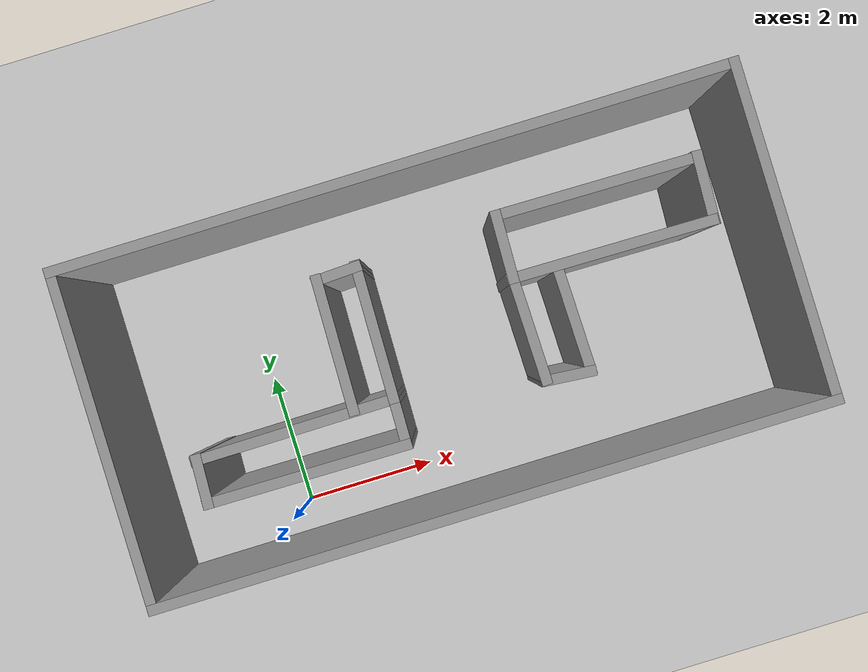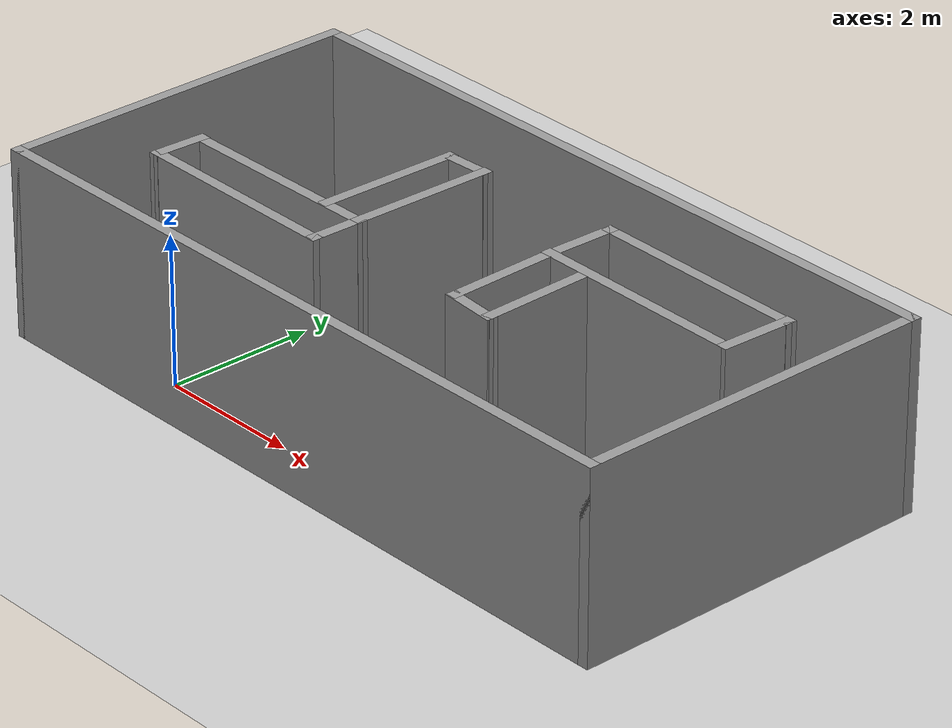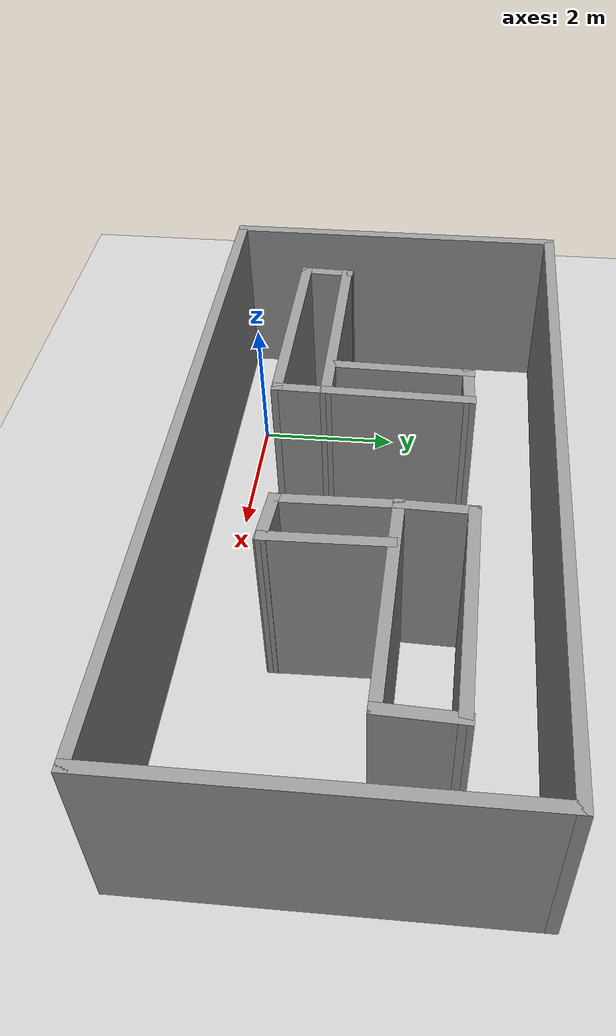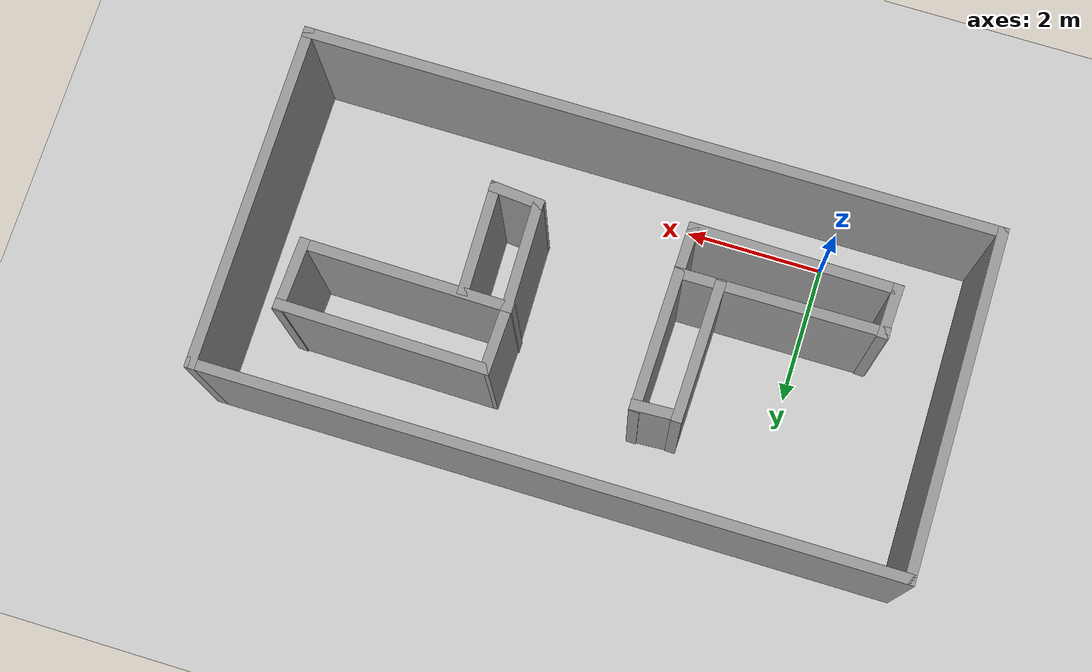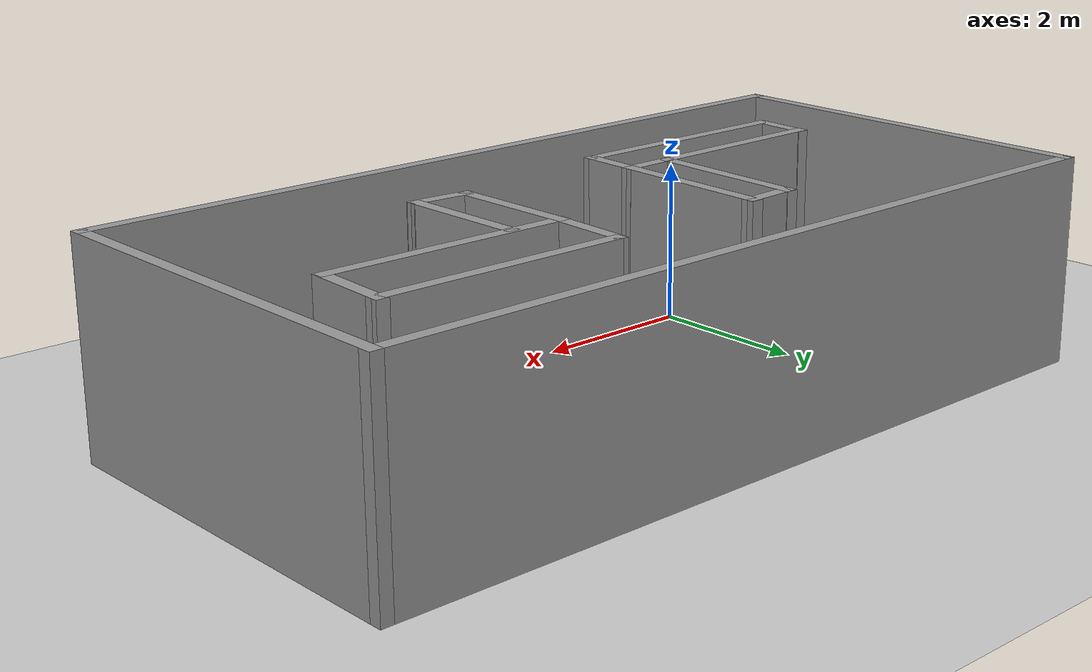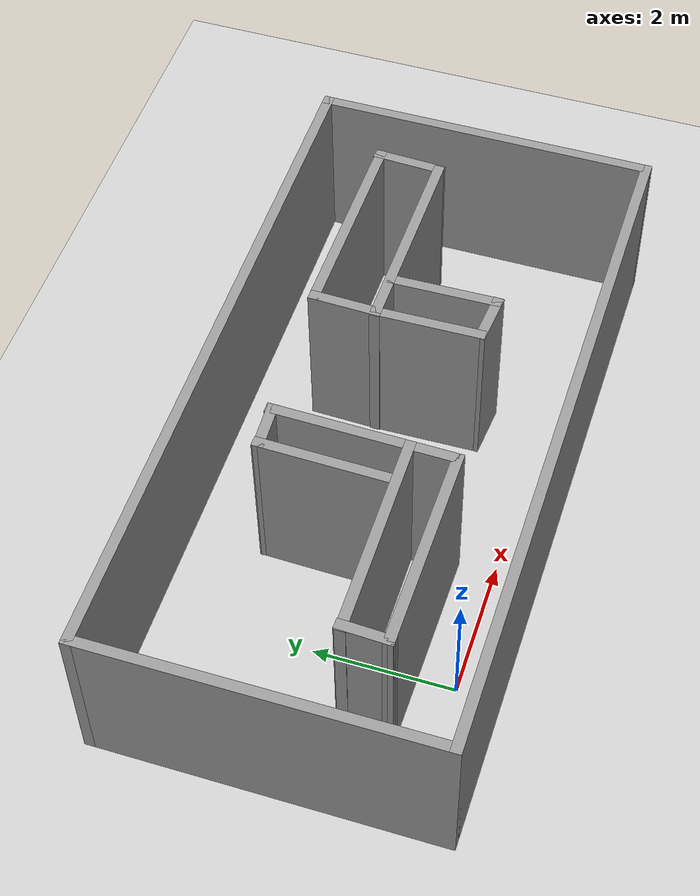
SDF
<sdf version="1.6">
 <world name="default">
  <light name="sun" type="directional">
   <pose>0 0 10 0 -0 0</pose>
   <diffuse>0.8 0.8 0.8 1</diffuse>
   <specular>0.2 0.2 0.2 1</specular>
   <attenuation>
    <range>1000</range>
    <constant>0.9</constant>
    <linear>0.01</linear>
    <quadratic>0.001</quadratic>
   </attenuation>
   <direction>-0.5 0.1 -0.9</direction>
  </light>
  <model name="ground_plane">
   <static>1</static>
   <link name="link">
    <collision name="collision">
     <geometry><plane><normal>0 0 1</normal><size>100 100</size></plane></geometry>
     <surface><friction><ode><mu>100</mu><mu2>50</mu2></ode></friction></surface>
    </collision>
    <visual name="visual">
     <cast_shadows>0</cast_shadows>
     <geometry><plane><normal>0 0 1</normal><size>100 100</size></plane></geometry>
     <material>
      <script><uri>file://media/materials/scripts/gazebo.material</uri><name>Gazebo/Grey</name></script>
     </material>
    </visual>
   </link>
  </model>
  <gravity>0 0 -9.8</gravity>
  <magnetic_field>6e-06 2.3e-05 -4.2e-05</magnetic_field>
  <atmosphere type="adiabatic"/>
  <physics name="default_physics" default="0" type="ode">
   <max_step_size>0.001</max_step_size>
   <real_time_factor>1</real_time_factor>
   <real_time_update_rate>1000</real_time_update_rate>
  </physics>
  <scene><ambient>0.4 0.4 0.4 1</ambient><background>0.7 0.7 0.7 1</background><shadows>1</shadows></scene>
  <audio><device>default</device></audio>
  <spherical_coordinates>
   <surface_model>EARTH_WGS84</surface_model>
   <latitude_deg>0</latitude_deg>
   <longitude_deg>0</longitude_deg>
   <elevation>0</elevation>
   <heading_deg>0</heading_deg>
  </spherical_coordinates>
  <model name="Untitled">
   <pose>2.7985 1.87197 0 0 -0 0</pose>
   <link name="Wall_0">
    <collision name="Wall_0_Collision">
     <geometry><box><size>10 0.15 2.5</size></box></geometry>
     <pose>0 0 1.25 0 -0 0</pose>
    </collision>
    <visual name="Wall_0_Visual">
     <pose>0 0 1.25 0 -0 0</pose>
     <geometry><box><size>10 0.15 2.5</size></box></geometry>
     <material>
      <script><uri>file://media/materials/scripts/gazebo.material</uri><name>Gazebo/Grey</name></script>
      <ambient>1 1 1 1</ambient>
     </material>
     <meta><layer>0</layer></meta>
    </visual>
    <pose>-0 -2.425 0 0 -0 0</pose>
   </link>
   <link name="Wall_1">
    <collision name="Wall_1_Collision">
     <geometry><box><size>5 0.15 2.5</size></box></geometry>
     <pose>0 0 1.25 0 -0 0</pose>
    </collision>
    <visual name="Wall_1_Visual">
     <pose>0 0 1.25 0 -0 0</pose>
     <geometry><box><size>5 0.15 2.5</size></box></geometry>
     <material>
      <script><uri>file://media/materials/scripts/gazebo.material</uri><name>Gazebo/Grey</name></script>
      <ambient>1 1 1 1</ambient>
     </material>
     <meta><layer>0</layer></meta>
    </visual>
    <pose>4.925 -0 0 0 -0 1.5708</pose>
   </link>
   <link name="Wall_10">
    <collision name="Wall_10_Collision">
     <geometry><box><size>1.04134 0.15 2.5</size></box></geometry>
     <pose>0 0 1.25 0 -0 0</pose>
    </collision>
    <visual name="Wall_10_Visual">
     <pose>0 0 1.25 0 -0 0</pose>
     <geometry><box><size>1.04134 0.15 2.5</size></box></geometry>
     <material>
      <script><uri>file://media/materials/scripts/gazebo.material</uri><name>Gazebo/Grey</name></script>
      <ambient>1 1 1 1</ambient>
     </material>
     <meta><layer>0</layer></meta>
    </visual>
    <pose>1.1585 0.9251 0 0 -0 -1.60048</pose>
   </link>
   <link name="Wall_11">
    <collision name="Wall_11_Collision">
     <geometry><box><size>3.02672 0.15 2.5</size></box></geometry>
     <pose>0 0 1.25 0 -0 0</pose>
    </collision>
    <visual name="Wall_11_Visual">
     <pose>0 0 1.25 0 -0 0</pose>
     <geometry><box><size>3.02672 0.15 2.5</size></box></geometry>
     <material>
      <script><uri>file://media/materials/scripts/gazebo.material</uri><name>Gazebo/Grey</name></script>
      <ambient>1 1 1 1</ambient>
     </material>
     <meta><layer>0</layer></meta>
    </visual>
    <pose>2.57028 0.459787 0 0 -0 -0.013792</pose>
   </link>
   <link name="Wall_12">
    <collision name="Wall_12_Collision">
     <geometry><box><size>1.05505 0.15 2.5</size></box></geometry>
     <pose>0 0 1.25 0 -0 0</pose>
    </collision>
    <visual name="Wall_12_Visual">
     <pose>0 0 1.25 0 -0 0</pose>
     <geometry><box><size>1.05505 0.15 2.5</size></box></geometry>
     <material>
      <script><uri>file://media/materials/scripts/gazebo.material</uri><name>Gazebo/Grey</name></script>
      <ambient>1 1 1 1</ambient>
     </material>
     <meta><layer>0</layer></meta>
    </visual>
    <pose>4.04156 0.892037 0 0 -0 1.52694</pose>
   </link>
   <link name="Wall_13">
    <collision name="Wall_13_Collision">
     <geometry><box><size>3.02657 0.15 2.5</size></box></geometry>
     <pose>0 0 1.25 0 -0 0</pose>
    </collision>
    <visual name="Wall_13_Visual">
     <pose>0 0 1.25 0 -0 0</pose>
     <geometry><box><size>3.02657 0.15 2.5</size></box></geometry>
     <material>
      <script><uri>file://media/materials/scripts/gazebo.material</uri><name>Gazebo/Grey</name></script>
      <ambient>1 1 1 1</ambient>
     </material>
     <meta><layer>0</layer></meta>
    </visual>
    <pose>2.62317 1.35074 0 0 -0 3.1278</pose>
   </link>
   <link name="Wall_15">
    <collision name="Wall_15_Collision">
     <geometry><box><size>2.01365 0.15 2.5</size></box></geometry>
     <pose>0 0 1.25 0 -0 0</pose>
    </collision>
    <visual name="Wall_15_Visual">
     <pose>0 0 1.25 0 -0 0</pose>
     <geometry><box><size>2.01365 0.15 2.5</size></box></geometry>
     <material>
      <script><uri>file://media/materials/scripts/gazebo.material</uri><name>Gazebo/Grey</name></script>
      <ambient>1 1 1 1</ambient>
     </material>
     <meta><layer>0</layer></meta>
    </visual>
    <pose>-1.46666 0.318437 0 0 -0 1.54951</pose>
   </link>
   <link name="Wall_16">
    <collision name="Wall_16_Collision">
     <geometry><box><size>0.72416 0.15 2.5</size></box></geometry>
     <pose>0 0 1.25 0 -0 0</pose>
    </collision>
    <visual name="Wall_16_Visual">
     <pose>0 0 1.25 0 -0 0</pose>
     <geometry><box><size>0.72416 0.15 2.5</size></box></geometry>
     <material>
      <script><uri>file://media/materials/scripts/gazebo.material</uri><name>Gazebo/Grey</name></script>
      <ambient>1 1 1 1</ambient>
     </material>
     <meta><layer>0</layer></meta>
    </visual>
    <pose>-1.16005 1.25005 0 0 -0 0.046084</pose>
   </link>
   <link name="Wall_17">
    <collision name="Wall_17_Collision">
     <geometry><box><size>2.04006 0.15 2.5</size></box></geometry>
     <pose>0 0 1.25 0 -0 0</pose>
    </collision>
    <visual name="Wall_17_Visual">
     <pose>0 0 1.25 0 -0 0</pose>
     <geometry><box><size>2.04006 0.15 2.5</size></box></geometry>
     <material>
      <script><uri>file://media/materials/scripts/gazebo.material</uri><name>Gazebo/Grey</name></script>
      <ambient>1 1 1 1</ambient>
     </material>
     <meta><layer>0</layer></meta>
    </visual>
    <pose>-0.892238 0.331662 0 0 -0 -1.59086</pose>
   </link>
   <link name="Wall_19">
    <collision name="Wall_19_Collision">
     <geometry><box><size>1.61799 0.15 2.5</size></box></geometry>
     <pose>0 0 1.25 0 -0 0</pose>
    </collision>
    <visual name="Wall_19_Visual">
     <pose>0 0 1.25 0 -0 0</pose>
     <geometry><box><size>1.61799 0.15 2.5</size></box></geometry>
     <material>
      <script><uri>file://media/materials/scripts/gazebo.material</uri><name>Gazebo/Grey</name></script>
      <ambient>1 1 1 1</ambient>
     </material>
     <meta><layer>0</layer></meta>
    </visual>
    <pose>1.1585 -0.25425 0 0 -0 -1.55278</pose>
   </link>
   <link name="Wall_2">
    <collision name="Wall_2_Collision">
     <geometry><box><size>10 0.15 2.5</size></box></geometry>
     <pose>0 0 1.25 0 -0 0</pose>
    </collision>
    <visual name="Wall_2_Visual">
     <pose>0 0 1.25 0 -0 0</pose>
     <geometry><box><size>10 0.15 2.5</size></box></geometry>
     <material>
      <script><uri>file://media/materials/scripts/gazebo.material</uri><name>Gazebo/Grey</name></script>
      <ambient>1 1 1 1</ambient>
     </material>
     <meta><layer>0</layer></meta>
    </visual>
    <pose>-0 2.425 0 0 -0 3.14159</pose>
   </link>
   <link name="Wall_20">
    <collision name="Wall_20_Collision">
     <geometry><box><size>0.777705 0.15 2.5</size></box></geometry>
     <pose>0 0 1.25 0 -0 0</pose>
    </collision>
    <visual name="Wall_20_Visual">
     <pose>0 0 1.25 0 -0 0</pose>
     <geometry><box><size>0.777705 0.15 2.5</size></box></geometry>
     <material>
      <script><uri>file://media/materials/scripts/gazebo.material</uri><name>Gazebo/Grey</name></script>
      <ambient>1 1 1 1</ambient>
     </material>
     <meta><layer>0</layer></meta>
    </visual>
    <pose>1.48495 -1.0278 0 0 -0 -0.084244</pose>
   </link>
   <link name="Wall_21">
    <collision name="Wall_21_Collision">
     <geometry><box><size>1.61799 0.15 2.5</size></box></geometry>
     <pose>0 0 1.25 0 -0 0</pose>
    </collision>
    <visual name="Wall_21_Visual">
     <pose>0 0 1.25 0 -0 0</pose>
     <geometry><box><size>1.61799 0.15 2.5</size></box></geometry>
     <material>
      <script><uri>file://media/materials/scripts/gazebo.material</uri><name>Gazebo/Grey</name></script>
      <ambient>1 1 1 1</ambient>
     </material>
     <meta><layer>0</layer></meta>
    </visual>
    <pose>1.78495 -0.30715 0 0 -0 1.58882</pose>
   </link>
   <link name="Wall_3">
    <collision name="Wall_3_Collision">
     <geometry><box><size>5 0.15 2.5</size></box></geometry>
     <pose>0 0 1.25 0 -0 0</pose>
    </collision>
    <visual name="Wall_3_Visual">
     <pose>0 0 1.25 0 -0 0</pose>
     <geometry><box><size>5 0.15 2.5</size></box></geometry>
     <material>
      <script><uri>file://media/materials/scripts/gazebo.material</uri><name>Gazebo/Grey</name></script>
      <ambient>1 1 1 1</ambient>
     </material>
     <meta><layer>0</layer></meta>
    </visual>
    <pose>-4.925 -0 0 0 -0 -1.5708</pose>
   </link>
   <link name="Wall_5">
    <collision name="Wall_5_Collision">
     <geometry><box><size>0.777008 0.15 2.5</size></box></geometry>
     <pose>0 0 1.25 0 -0 0</pose>
    </collision>
    <visual name="Wall_5_Visual">
     <pose>0 0 1.25 0 -0 0</pose>
     <geometry><box><size>0.777008 0.15 2.5</size></box></geometry>
     <material>
      <script><uri>file://media/materials/scripts/gazebo.material</uri><name>Gazebo/Grey</name></script>
      <ambient>1 1 1 1</ambient>
     </material>
     <meta><layer>0</layer></meta>
    </visual>
    <pose>-3.7612 -0.939625 0 0 -0 -1.61299</pose>
   </link>
   <link name="Wall_6">
    <collision name="Wall_6_Collision">
     <geometry><box><size>3 0.15 2.5</size></box></geometry>
     <pose>0 0 1.25 0 -0 0</pose>
    </collision>
    <visual name="Wall_6_Visual">
     <pose>0 0 1.25 0 -0 0</pose>
     <geometry><box><size>3 0.15 2.5</size></box></geometry>
     <material>
      <script><uri>file://media/materials/scripts/gazebo.material</uri><name>Gazebo/Grey</name></script>
      <ambient>1 1 1 1</ambient>
     </material>
     <meta><layer>0</layer></meta>
    </visual>
    <pose>-2.34943 -1.26608 0 0 -0 -0.00928</pose>
   </link>
   <link name="Wall_7">
    <collision name="Wall_7_Collision">
     <geometry><box><size>0.789812 0.15 2.5</size></box></geometry>
     <pose>0 0 1.25 0 -0 0</pose>
    </collision>
    <visual name="Wall_7_Visual">
     <pose>0 0 1.25 0 -0 0</pose>
     <geometry><box><size>0.789812 0.15 2.5</size></box></geometry>
     <material>
      <script><uri>file://media/materials/scripts/gazebo.material</uri><name>Gazebo/Grey</name></script>
      <ambient>1 1 1 1</ambient>
     </material>
     <meta><layer>0</layer></meta>
    </visual>
    <pose>-0.917813 -0.946238 0 0 -0 1.55012</pose>
   </link>
   <link name="Wall_8">
    <collision name="Wall_8_Collision">
     <geometry><box><size>3.00012 0.15 2.5</size></box></geometry>
     <pose>0 0 1.25 0 -0 0</pose>
    </collision>
    <visual name="Wall_8_Visual">
     <pose>0 0 1.25 0 -0 0</pose>
     <geometry><box><size>3.00012 0.15 2.5</size></box></geometry>
     <material>
      <script><uri>file://media/materials/scripts/gazebo.material</uri><name>Gazebo/Grey</name></script>
      <ambient>1 1 1 1</ambient>
     </material>
     <meta><layer>0</layer></meta>
    </visual>
    <pose>-2.3362 -0.633013 0 0 -0 -3.13695</pose>
   </link>
   <static>1</static>
  </model>
 </world>
</sdf>
